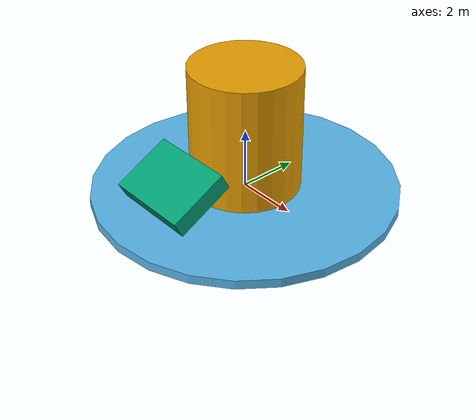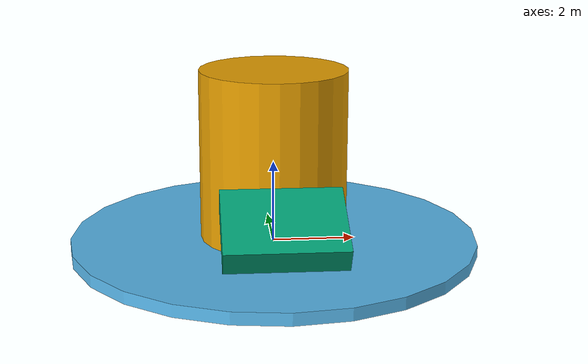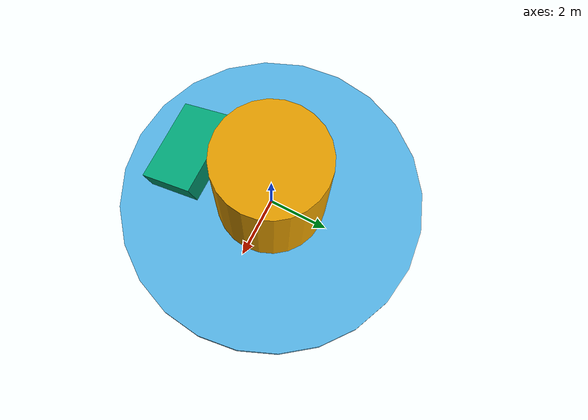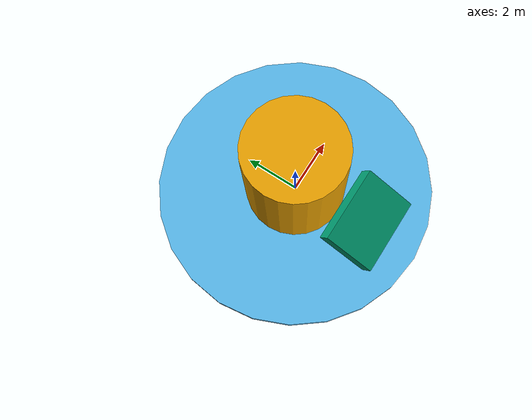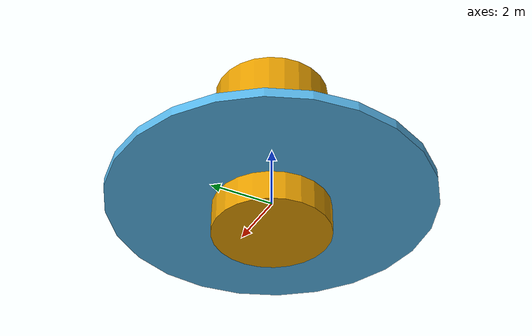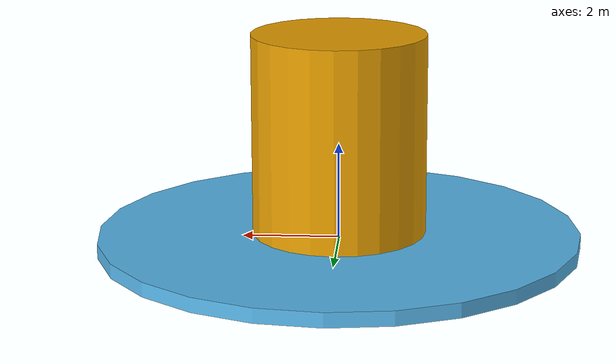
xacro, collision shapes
<?xml version="1.0" ?>
<!--
    Space Robotics Challenge (2): Final Round
    NASA-JSC
    Copyright (c) 2020, All Rights Reserved
    Unauthorized distribution strictly prohibited

    Definition of the Processing plant.
-->
<robot xmlns:xacro="http://www.ros.org/wiki/xacro" name="processing_plant">
        <!-- includes -->
    <xacro:include filename="../../rovers/common/inertia_macros.xacro"/>
    <xacro:arg name="name" 		default="processing_plant"/>
    <xacro:arg name="len" 		default="5.40"/>
    <xacro:arg name="rad" 		default="1.801"/>
    <xacro:arg name="zoffset"	default="0.60"/>
    <xacro:arg name="zoffset_collision"	default="1.60"/>

    <!-- Main Link  -->
    <link name="$(arg name)_link">
        <inertial>
            <origin xyz="0 0 2.00"
                    rpy="0 0 0"/>

            <mass 	value = "100.0"/>

            <xacro:cylinder_inertia
                    m = "20.0"
                    h = "3.0"
                    r = "0.2" />

        </inertial>

        <collision>
            <origin xyz="0 0 $(arg zoffset_collision)"
                    rpy="0 0 -${pi/2}"/>
            <geometry>
                <cylinder
                    length="$(arg len)"
                    radius="$(arg rad)"/>
            </geometry>
        </collision>

        <visual>
            <origin xyz="0 0 $(arg zoffset)"
                    rpy="0 0 -${pi/2}"/>
            <geometry>
                <mesh
                    filename = "package://srcp2_models_final/meshes/landers/processing/ProcessingPlant.dae"
                    scale    = "1 1 1"/>
            </geometry>
        </visual>
    </link>

    <!-- Spawn Zone  -->
    <link name="$(arg name)_spawn_zone_link">
        <collision>
            <geometry>
                <cylinder
                    length="0.3"
                    radius="5.0" />
            </geometry>
        </collision>
    </link>

    <!-- Spawn Joint Main to Spawn  -->
    <joint name="$(arg name)_spawning_zone_joint" type="fixed">
        <parent  link="$(arg name)_link"/>
        <child link="$(arg name)_spawn_zone_link"/>
        <origin xyz="0 0 0" rpy="0 0 0"/>
        <axis   xyz="0 0 1"/>
    </joint>

    <!-- Score Hopper Zone  -->
    <link name="$(arg name)_hopper_zone_link">
        <collision>
            <origin xyz="0.0 -2.9 1.25" rpy="0.475 0 0"/>
            <geometry>
                <box size="2.8 2.0 0.6"/>
            </geometry>
        </collision>
        <inertial>
            <origin xyz='0.0 0.0 0.0' rpy='0.0 0.0 0.0'/>
            <mass value='1.0'/>
            <inertia ixx='0.0' ixy='0.0' ixz='0.0'
                    iyy='0.0' iyz='0.0' izz='0.0'/>
        </inertial>
    </link>

    <!-- Score Hopper Joint  -->
    <joint name="$(arg name)_hopper_zone_joint" type="fixed">
        <parent  link="$(arg name)_link"/>
        <child link="$(arg name)_hopper_zone_link"/>
        <origin xyz="0 0 0" rpy="0 0 0"/>
        <axis   xyz="0 0 1"/>
    </joint>

    <gazebo reference="$(arg name)_hopper_zone_link">
        <collision>
            <surface>
                <contact>
                    <collide_bitmask>0x02</collide_bitmask>
                </contact>
            </surface>
        </collision>
    </gazebo>

    <gazebo reference='$(arg name)_hopper_zone_joint'>
        <preserveFixedJoint>true</preserveFixedJoint>
    </gazebo>

    <gazebo reference="$(arg name)_spawn_zone_link">
        <collision>
            <surface>
                <contact>
                    <collide_bitmask>0x02</collide_bitmask>
                </contact>
            </surface>
        </collision>
    </gazebo>

    <!-- Gazaboo -->
    <gazebo 	reference="$(arg name)_link"
                mu1="1.0"
                mu2="1.0"
                kp="100000.0"
                kd="1.0"/>

    <gazebo>
        <static>true</static>
        <selfCollide>false</selfCollide>
        <gravity>false</gravity>
    </gazebo>
 </robot>

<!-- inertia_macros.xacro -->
<!--
	Space Robotics Challenge Phase 2
	NASA-JSC
	Copyright (c) 2020, All Rights Reserved
	Unauthorized distribution strictly prohibited
-->
<robot xmlns:xacro="http://www.ros.org/wiki/xacro">

    <!--
        @brief compute the moments of inertia of a cylinder
        @param m - mass (kg)
        @param r - radius (m)
        @param h - height (m)
    -->
    <xacro:macro name="cylinder_inertia" params="m r h">
        <inertia
            ixx="${m*(3.0*r*r+h*h)/12.0}" ixy = "0" ixz = "0"
            iyy="${m*(3.0*r*r+h*h)/12.0}" iyz = "0"
            izz="${m*r*r/2.0}"
        />
    </xacro:macro>

    <!--
        @brief compute the moments of inertia of a box
        @param m - mass (kg)
        @param x,y,z - dimensions (m)
    -->
    <xacro:macro name="box_inertia" params="m x y z">
        <inertia
            ixx="${m*(y*y+z*z)/12.0}" ixy = "0" ixz = "0"
            iyy="${m*(x*x+z*z)/12.0}" iyz = "0"
            izz="${m*(x*x+y*y)/12.0}"
        />
    </xacro:macro>

    <!--
        @brief compute the moments of inertia of a sphere
        @param m - mass (kg)
        @param r - radius (m)
    -->
    <xacro:macro name="sphere_inertia" params="m r">
        <inertia
            ixx="${2.0*m*r*r/5.0}" ixy = "0" ixz = "0"
            iyy="${2.0*m*r*r/5.0}" iyz = "0"
            izz="${2.0*m*r*r/5.0}"
        />
    </xacro:macro>
</robot>
